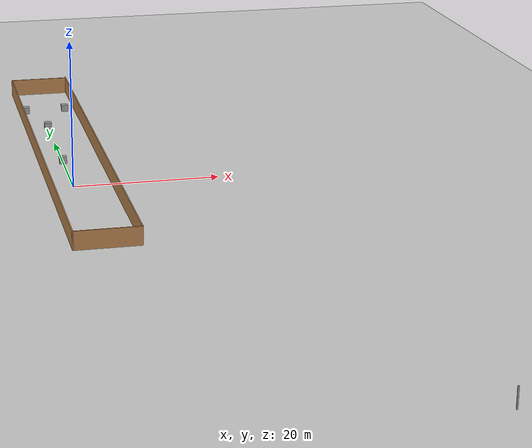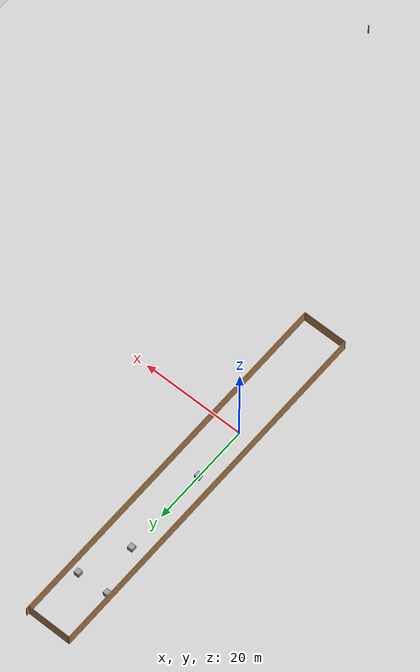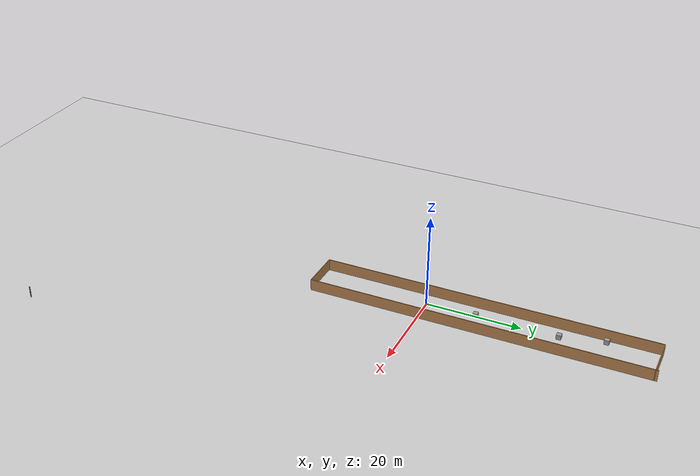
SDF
<sdf version="1.7">
 <world name="default">
  <light name="sun" type="directional">
   <pose>0 0 10 0 -0 0</pose>
   <diffuse>0.8 0.8 0.8 1</diffuse>
   <specular>0.2 0.2 0.2 1</specular>
   <attenuation>
    <range>1000</range>
    <constant>0.9</constant>
    <linear>0.01</linear>
    <quadratic>0.001</quadratic>
   </attenuation>
   <direction>-0.5 0.1 -0.9</direction>
   <spot><inner_angle>0</inner_angle><outer_angle>0</outer_angle><falloff>0</falloff></spot>
  </light>
  <model name="ground_plane">
   <static>1</static>
   <link name="link">
    <collision name="collision">
     <geometry><plane><normal>0 0 1</normal><size>100 100</size></plane></geometry>
     <surface>
      <contact><collide_bitmask>65535</collide_bitmask></contact>
      <friction><ode><mu>100</mu><mu2>50</mu2></ode></friction>
     </surface>
    </collision>
    <visual name="visual">
     <cast_shadows>0</cast_shadows>
     <geometry><plane><normal>0 0 1</normal><size>100 100</size></plane></geometry>
     <material>
      <script><uri>file://media/materials/scripts/gazebo.material</uri><name>Gazebo/Grey</name></script>
     </material>
    </visual>
   </link>
  </model>
  <gravity>0 0 -9.8</gravity>
  <magnetic_field>6e-06 2.3e-05 -4.2e-05</magnetic_field>
  <atmosphere type="adiabatic"/>
  <physics type="ode">
   <max_step_size>0.001</max_step_size>
   <real_time_factor>1</real_time_factor>
   <real_time_update_rate>1000</real_time_update_rate>
  </physics>
  <scene><ambient>0.4 0.4 0.4 1</ambient><background>0.7 0.7 0.7 1</background><shadows>1</shadows></scene>
  <spherical_coordinates>
   <surface_model>EARTH_WGS84</surface_model>
   <latitude_deg>0</latitude_deg>
   <longitude_deg>0</longitude_deg>
   <elevation>0</elevation>
   <heading_deg>0</heading_deg>
  </spherical_coordinates>
  <model name="Maze_design">
   <pose>14.6398 -13.3551 0 0 -0 0</pose>
   <link name="Wall_45">
    <collision name="Wall_45_Collision">
     <geometry><box><size>0.16 0.15 2.5</size></box></geometry>
     <pose>0 0 1.25 0 -0 0</pose>
    </collision>
    <visual name="Wall_45_Visual">
     <pose>0 0 1.25 0 -0 0</pose>
     <geometry><box><size>0.16 0.15 2.5</size></box></geometry>
     <material>
      <script><uri>file://media/materials/scripts/gazebo.material</uri><name>Gazebo/Grey</name></script>
      <ambient>1 1 1 1</ambient>
     </material>
     <meta><layer>0</layer></meta>
    </visual>
    <pose>17.9482 -60.942 0 0 -0 0</pose>
   </link>
   <link name="Wall_52">
    <collision name="Wall_52_Collision">
     <geometry><box><size>71.25 0.15 2.5</size></box></geometry>
     <pose>0 0 1.25 0 -0 0</pose>
    </collision>
    <visual name="Wall_52_Visual">
     <pose>0 0 1.25 0 -0 0</pose>
     <geometry><box><size>71.25 0.15 2.5</size></box></geometry>
     <material>
      <script><uri>file://media/materials/scripts/gazebo.material</uri><name>Gazebo/Wood</name></script>
      <ambient>1 0.764706 0.305882 1</ambient>
     </material>
     <meta><layer>0</layer></meta>
    </visual>
    <pose>-9.3532 25.392 0 0 -0 1.5708</pose>
   </link>
   <link name="Wall_54">
    <collision name="Wall_54_Collision">
     <geometry><box><size>8.75 0.15 2.5</size></box></geometry>
     <pose>0 0 1.25 0 -0 0</pose>
    </collision>
    <visual name="Wall_54_Visual">
     <pose>0 0 1.25 0 -0 0</pose>
     <geometry><box><size>8.75 0.15 2.5</size></box></geometry>
     <material>
      <script><uri>file://media/materials/scripts/gazebo.material</uri><name>Gazebo/Wood</name></script>
      <ambient>1 0.764706 0.305882 1</ambient>
     </material>
     <meta><layer>0</layer></meta>
    </visual>
    <pose>-13.6532 -10.158 0 0 -0 3.14159</pose>
   </link>
   <link name="Wall_55">
    <collision name="Wall_55_Collision">
     <geometry><box><size>70.75 0.15 2.5</size></box></geometry>
     <pose>0 0 1.25 0 -0 0</pose>
    </collision>
    <visual name="Wall_55_Visual">
     <pose>0 0 1.25 0 -0 0</pose>
     <geometry><box><size>70.75 0.15 2.5</size></box></geometry>
     <material>
      <script><uri>file://media/materials/scripts/gazebo.material</uri><name>Gazebo/Wood</name></script>
      <ambient>1 1 1 1</ambient>
     </material>
     <meta><layer>0</layer></meta>
    </visual>
    <pose>-17.9532 25.142 0 0 -0 1.5708</pose>
   </link>
   <link name="Wall_56">
    <collision name="Wall_56_Collision">
     <geometry><box><size>8.75 0.15 2.5</size></box></geometry>
     <pose>0 0 1.25 0 -0 0</pose>
    </collision>
    <visual name="Wall_56_Visual">
     <pose>0 0 1.25 0 -0 0</pose>
     <geometry><box><size>8.75 0.15 2.5</size></box></geometry>
     <material>
      <script><uri>file://media/materials/scripts/gazebo.material</uri><name>Gazebo/Wood</name></script>
      <ambient>1 0.764706 0.305882 1</ambient>
     </material>
     <meta><layer>0</layer></meta>
    </visual>
    <pose>-13.6532 60.442 0 0 -0 0</pose>
   </link>
   <static>1</static>
  </model>
  <model name="unit_box">
   <pose>-0.010031 10.544 0.5 0 -0 0</pose>
   <link name="link">
    <inertial>
     <mass>1</mass>
     <inertia>
      <ixx>0.166667</ixx>
      <ixy>0</ixy>
      <ixz>0</ixz>
      <iyy>0.166667</iyy>
      <iyz>0</iyz>
      <izz>0.166667</izz>
     </inertia>
    </inertial>
    <collision name="collision"><geometry><box><size>1 1 1</size></box></geometry></collision>
    <visual name="visual">
     <geometry><box><size>1 1 1</size></box></geometry>
     <material>
      <script><name>Gazebo/Grey</name><uri>file://media/materials/scripts/gazebo.material</uri></script>
     </material>
    </visual>
   </link>
  </model>
  <model name="unit_box_0">
   <pose>-0.032531 27.6141 0.5 0 -0 0</pose>
   <link name="link">
    <inertial>
     <mass>1</mass>
     <inertia>
      <ixx>0.166667</ixx>
      <ixy>0</ixy>
      <ixz>0</ixz>
      <iyy>0.166667</iyy>
      <iyz>0</iyz>
      <izz>0.166667</izz>
     </inertia>
    </inertial>
    <collision name="collision"><geometry><box><size>1 1 1</size></box></geometry></collision>
    <visual name="visual">
     <geometry><box><size>1 1 1</size></box></geometry>
     <material>
      <script><name>Gazebo/Grey</name><uri>file://media/materials/scripts/gazebo.material</uri></script>
     </material>
    </visual>
   </link>
  </model>
  <model name="unit_box_1">
   <pose>-2.32618 36.4597 0.5 0 -0 0</pose>
   <link name="link">
    <inertial>
     <mass>1</mass>
     <inertia>
      <ixx>0.166667</ixx>
      <ixy>0</ixy>
      <ixz>0</ixz>
      <iyy>0.166667</iyy>
      <iyz>0</iyz>
      <izz>0.166667</izz>
     </inertia>
    </inertial>
    <collision name="collision"><geometry><box><size>1 1 1</size></box></geometry></collision>
    <visual name="visual">
     <geometry><box><size>1 1 1</size></box></geometry>
     <material>
      <script><name>Gazebo/Grey</name><uri>file://media/materials/scripts/gazebo.material</uri></script>
     </material>
    </visual>
   </link>
  </model>
  <model name="unit_box_2">
   <pose>3.70008 36.6563 0.5 0 -0 0</pose>
   <link name="link">
    <inertial>
     <mass>1</mass>
     <inertia>
      <ixx>0.166667</ixx>
      <ixy>0</ixy>
      <ixz>0</ixz>
      <iyy>0.166667</iyy>
      <iyz>0</iyz>
      <izz>0.166667</izz>
     </inertia>
    </inertial>
    <collision name="collision"><geometry><box><size>1 1 1</size></box></geometry></collision>
    <visual name="visual">
     <geometry><box><size>1 1 1</size></box></geometry>
     <material>
      <script><name>Gazebo/Grey</name><uri>file://media/materials/scripts/gazebo.material</uri></script>
     </material>
    </visual>
   </link>
  </model>
 </world>
</sdf>
